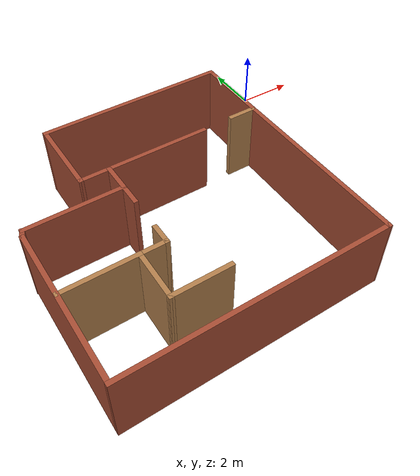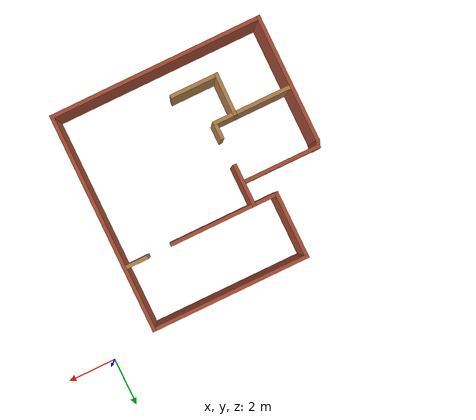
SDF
<?xml version='1.0'?>
<sdf version='1.6'>
  <model name='Room2'>
    <pose frame=''>-6.41984 -5.01666 0 0 -0 0</pose>
    <link name='Wall_11'>
      <collision name='Wall_11_Collision'>
        <geometry>
          <box>
            <size>1 0.15 2.5</size>
          </box>
        </geometry>
        <pose frame=''>0 0 1.25 0 -0 0</pose>
      </collision>
      <visual name='Wall_11_Visual'>
        <pose frame=''>0 0 1.25 0 -0 0</pose>
        <geometry>
          <box>
            <size>1 0.15 2.5</size>
          </box>
        </geometry>
        <material>
          <script>
            <uri>file://media/materials/scripts/gazebo.material</uri>
            <name>Gazebo/Wood</name>
          </script>
          <ambient>1 1 1 1</ambient>
        </material>
        <meta>
          <layer>0</layer>
        </meta>
      </visual>
      <pose frame=''>3.84484 1.86666 0 0 -0 0</pose>
    </link>
    <link name='Wall_13'>
      <collision name='Wall_13_Collision'>
        <geometry>
          <box>
            <size>1.75 0.15 2.5</size>
          </box>
        </geometry>
        <pose frame=''>0 0 1.25 0 -0 0</pose>
      </collision>
      <visual name='Wall_13_Visual'>
        <pose frame=''>0 0 1.25 0 -0 0</pose>
        <geometry>
          <box>
            <size>1.75 0.15 2.5</size>
          </box>
        </geometry>
        <material>
          <script>
            <uri>file://media/materials/scripts/gazebo.material</uri>
            <name>Gazebo/Bricks</name>
          </script>
          <ambient>1 1 1 1</ambient>
        </material>
        <meta>
          <layer>0</layer>
        </meta>
      </visual>
      <pose frame=''>-1.09016 1.01666 0 0 -0 -1.5708</pose>
    </link>
    <link name='Wall_15'>
      <collision name='Wall_15_Collision'>
        <geometry>
          <box>
            <size>0.97 0.15 2.5</size>
          </box>
        </geometry>
        <pose frame=''>0 0 1.25 0 -0 0</pose>
      </collision>
      <visual name='Wall_15_Visual'>
        <pose frame=''>0 0 1.25 0 -0 0</pose>
        <geometry>
          <box>
            <size>0.97 0.15 2.5</size>
          </box>
        </geometry>
        <material>
          <script>
            <uri>file://media/materials/scripts/gazebo.material</uri>
            <name>Gazebo/Wood</name>
          </script>
          <ambient>1 1 1 1</ambient>
        </material>
        <meta>
          <layer>0</layer>
        </meta>
      </visual>
      <pose frame=''>-1.51016 -1.57334 0 0 -0 0</pose>
    </link>
    <link name='Wall_18'>
      <collision name='Wall_18_Collision'>
        <geometry>
          <box>
            <size>0.75 0.15 2.5</size>
          </box>
        </geometry>
        <pose frame=''>0 0 1.25 0 -0 0</pose>
      </collision>
      <visual name='Wall_18_Visual'>
        <pose frame=''>0 0 1.25 0 -0 0</pose>
        <geometry>
          <box>
            <size>0.75 0.15 2.5</size>
          </box>
        </geometry>
        <material>
          <script>
            <uri>file://media/materials/scripts/gazebo.material</uri>
            <name>Gazebo/Wood</name>
          </script>
          <ambient>1 1 1 1</ambient>
        </material>
        <meta>
          <layer>0</layer>
        </meta>
      </visual>
      <pose frame=''>-1.10016 -1.27334 0 0 -0 1.5708</pose>
    </link>
    <link name='Wall_20'>
      <collision name='Wall_20_Collision'>
        <geometry>
          <box>
            <size>3.25 0.15 2.5</size>
          </box>
        </geometry>
        <pose frame=''>0 0 1.25 0 -0 0</pose>
      </collision>
      <visual name='Wall_20_Visual'>
        <pose frame=''>0 0 1.25 0 -0 0</pose>
        <geometry>
          <box>
            <size>3.25 0.15 2.5</size>
          </box>
        </geometry>
        <material>
          <script>
            <uri>file://media/materials/scripts/gazebo.material</uri>
            <name>Gazebo/Bricks</name>
          </script>
          <ambient>1 1 1 1</ambient>
        </material>
        <meta>
          <layer>0</layer>
        </meta>
      </visual>
      <pose frame=''>-2.66016 0.896658 0 0 -0 3.14159</pose>
    </link>
    <link name='Wall_23'>
      <collision name='Wall_23_Collision'>
        <geometry>
          <box>
            <size>5.25 0.15 2.5</size>
          </box>
        </geometry>
        <pose frame=''>0 0 1.25 0 -0 0</pose>
      </collision>
      <visual name='Wall_23_Visual'>
        <pose frame=''>0 0 1.25 0 -0 0</pose>
        <geometry>
          <box>
            <size>5.25 0.15 2.5</size>
          </box>
        </geometry>
        <material>
          <script>
            <uri>file://media/materials/scripts/gazebo.material</uri>
            <name>Gazebo/Bricks</name>
          </script>
          <ambient>1 1 1 1</ambient>
        </material>
        <meta>
          <layer>0</layer>
        </meta>
      </visual>
      <pose frame=''>-4.28878 -1.87006 0 0 -0 1.5708</pose>
    </link>
    <link name='Wall_25'>
      <collision name='Wall_25_Collision'>
        <geometry>
          <box>
            <size>0.380533 0.15 2.5</size>
          </box>
        </geometry>
        <pose frame=''>0 0 1.25 0 -0 0</pose>
      </collision>
      <visual name='Wall_25_Visual'>
        <pose frame=''>0 0 1.25 0 -0 0</pose>
        <geometry>
          <box>
            <size>0.380533 0.15 2.5</size>
          </box>
        </geometry>
        <material>
          <script>
            <uri>file://media/materials/scripts/gazebo.material</uri>
            <name>Gazebo/Bricks</name>
          </script>
          <ambient>1 1 1 1</ambient>
        </material>
        <meta>
          <layer>0</layer>
        </meta>
      </visual>
      <pose frame=''>-4.24947 0.788301 0 0 -0 1.22278</pose>
    </link>
    <link name='Wall_27'>
      <collision name='Wall_27_Collision'>
        <geometry>
          <box>
            <size>1.75012 0.15 2.5</size>
          </box>
        </geometry>
        <pose frame=''>0 0 1.25 0 -0 0</pose>
      </collision>
      <visual name='Wall_27_Visual'>
        <pose frame=''>0 0 1.25 0 -0 0</pose>
        <geometry>
          <box>
            <size>1.75012 0.15 2.5</size>
          </box>
        </geometry>
        <material>
          <script>
            <uri>file://media/materials/scripts/gazebo.material</uri>
            <name>Gazebo/Wood</name>
          </script>
          <ambient>1 1 1 1</ambient>
        </material>
        <meta>
          <layer>0</layer>
        </meta>
      </visual>
      <pose frame=''>-1.93016 -2.37334 0 0 -0 1.5583</pose>
    </link>
    <link name='Wall_28'>
      <collision name='Wall_28_Collision'>
        <geometry>
          <box>
            <size>2.5 0.15 2.5</size>
          </box>
        </geometry>
        <pose frame=''>0 0 1.25 0 -0 0</pose>
      </collision>
      <visual name='Wall_28_Visual'>
        <pose frame=''>0 0 1.25 0 -0 0</pose>
        <geometry>
          <box>
            <size>2.5 0.15 2.5</size>
          </box>
        </geometry>
        <material>
          <script>
            <uri>file://media/materials/scripts/gazebo.material</uri>
            <name>Gazebo/Wood</name>
          </script>
          <ambient>1 1 1 1</ambient>
        </material>
        <meta>
          <layer>0</layer>
        </meta>
      </visual>
      <pose frame=''>-3.09516 -1.57334 0 0 -0 3.14159</pose>
    </link>
    <link name='Wall_3'>
      <collision name='Wall_3_Collision'>
        <geometry>
          <box>
            <size>2 0.15 2.5</size>
          </box>
        </geometry>
        <pose frame=''>0 0 1.25 0 -0 0</pose>
      </collision>
      <visual name='Wall_3_Visual'>
        <pose frame=''>0 0 1.25 0 -0 0</pose>
        <geometry>
          <box>
            <size>2 0.15 2.5</size>
          </box>
        </geometry>
        <material>
          <script>
            <uri>file://media/materials/scripts/gazebo.material</uri>
            <name>Gazebo/Wood</name>
          </script>
          <ambient>1 1 1 1</ambient>
        </material>
        <meta>
          <layer>0</layer>
        </meta>
      </visual>
      <pose frame=''>-1.01516 -3.17334 0 0 -0 0</pose>
    </link>
    <link name='Wall_5'>
      <collision name='Wall_5_Collision'>
        <geometry>
          <box>
            <size>8.74862 0.15 2.5</size>
          </box>
        </geometry>
        <pose frame=''>0 0 1.25 0 -0 0</pose>
      </collision>
      <visual name='Wall_5_Visual'>
        <pose frame=''>0 0 1.25 0 -0 0</pose>
        <geometry>
          <box>
            <size>8.74862 0.15 2.5</size>
          </box>
        </geometry>
        <material>
          <script>
            <uri>file://media/materials/scripts/gazebo.material</uri>
            <name>Gazebo/Bricks</name>
          </script>
          <ambient>1 1 1 1</ambient>
        </material>
        <meta>
          <layer>0</layer>
        </meta>
      </visual>
      <pose frame=''>0.010527 -4.42499 0 0 -0 0.000382</pose>
    </link>
    <link name='Wall_6'>
      <collision name='Wall_6_Collision'>
        <geometry>
          <box>
            <size>9 0.15 2.5</size>
          </box>
        </geometry>
        <pose frame=''>0 0 1.25 0 -0 0</pose>
      </collision>
      <visual name='Wall_6_Visual'>
        <pose frame=''>0 0 1.25 0 -0 0</pose>
        <geometry>
          <box>
            <size>9 0.15 2.5</size>
          </box>
        </geometry>
        <material>
          <script>
            <uri>file://media/materials/scripts/gazebo.material</uri>
            <name>Gazebo/Bricks</name>
          </script>
          <ambient>1 1 1 1</ambient>
        </material>
        <meta>
          <layer>0</layer>
        </meta>
      </visual>
      <pose frame=''>4.30984 0.001658 0 0 -0 1.5708</pose>
    </link>
    <link name='Wall_7'>
      <collision name='Wall_7_Collision'>
        <geometry>
          <box>
            <size>6.5 0.15 2.5</size>
          </box>
        </geometry>
        <pose frame=''>0 0 1.25 0 -0 0</pose>
      </collision>
      <visual name='Wall_7_Visual'>
        <pose frame=''>0 0 1.25 0 -0 0</pose>
        <geometry>
          <box>
            <size>6.5 0.15 2.5</size>
          </box>
        </geometry>
        <material>
          <script>
            <uri>file://media/materials/scripts/gazebo.material</uri>
            <name>Gazebo/Bricks</name>
          </script>
          <ambient>1 1 1 1</ambient>
        </material>
        <meta>
          <layer>0</layer>
        </meta>
      </visual>
      <pose frame=''>1.13484 4.42666 0 0 -0 3.14159</pose>
    </link>
    <link name='Wall_8'>
      <collision name='Wall_8_Collision'>
        <geometry>
          <box>
            <size>2.75 0.15 2.5</size>
          </box>
        </geometry>
        <pose frame=''>0 0 1.25 0 -0 0</pose>
      </collision>
      <visual name='Wall_8_Visual'>
        <pose frame=''>0 0 1.25 0 -0 0</pose>
        <geometry>
          <box>
            <size>2.75 0.15 2.5</size>
          </box>
        </geometry>
        <material>
          <script>
            <uri>file://media/materials/scripts/gazebo.material</uri>
            <name>Gazebo/Bricks</name>
          </script>
          <ambient>1 1 1 1</ambient>
        </material>
        <meta>
          <layer>0</layer>
        </meta>
      </visual>
      <pose frame=''>-2.04016 3.12666 0 0 -0 -1.5708</pose>
    </link>
    <link name='Wall_9'>
      <collision name='Wall_9_Collision'>
        <geometry>
          <box>
            <size>4.5 0.15 2.5</size>
          </box>
        </geometry>
        <pose frame=''>0 0 1.25 0 -0 0</pose>
      </collision>
      <visual name='Wall_9_Visual'>
        <pose frame=''>0 0 1.25 0 -0 0</pose>
        <geometry>
          <box>
            <size>4.5 0.15 2.5</size>
          </box>
        </geometry>
        <material>
          <script>
            <uri>file://media/materials/scripts/gazebo.material</uri>
            <name>Gazebo/Bricks</name>
          </script>
          <ambient>1 1 1 1</ambient>
        </material>
        <meta>
          <layer>0</layer>
        </meta>
      </visual>
      <pose frame=''>0.134836 1.82666 0 0 -0 0</pose>
    </link>
    <static>1</static>
  </model>
</sdf>
